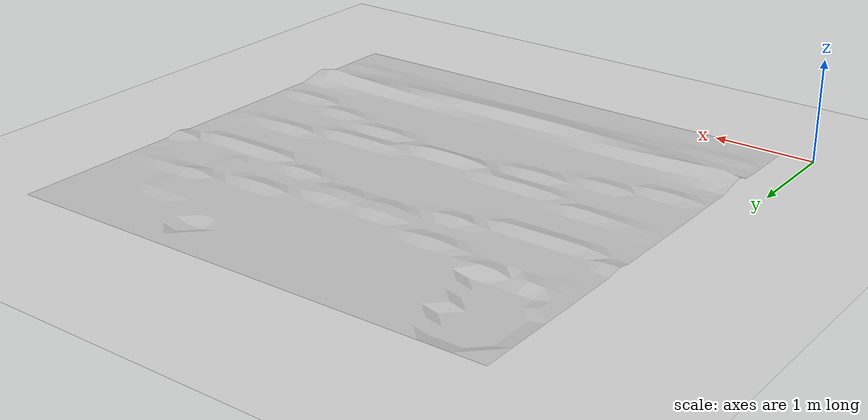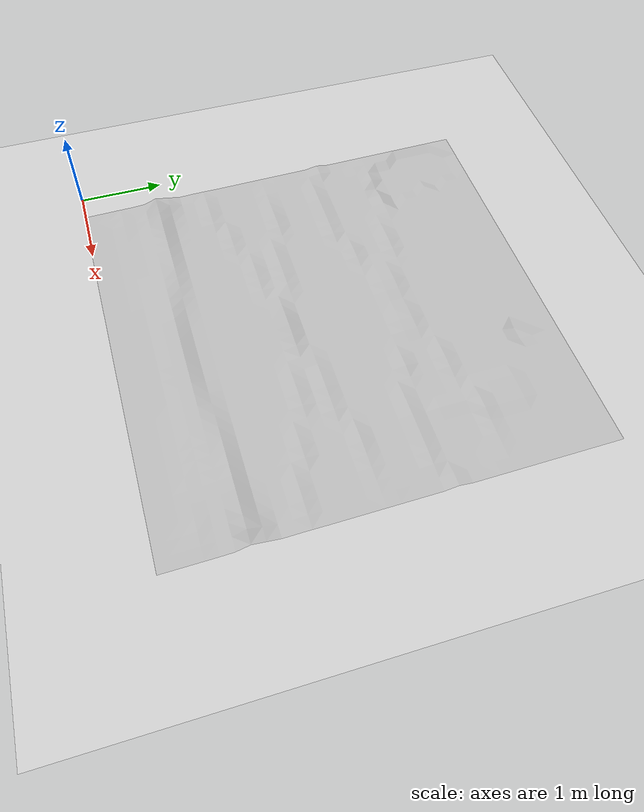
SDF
<sdf version="1.6">
 <world name="default">
  <light name="sun" type="directional">
   <pose>0 0 10 0 -0 0</pose>
   <diffuse>0.8 0.8 0.8 1</diffuse>
   <specular>0.2 0.2 0.2 1</specular>
   <attenuation>
    <range>1000</range>
    <constant>0.9</constant>
    <linear>0.01</linear>
    <quadratic>0.001</quadratic>
   </attenuation>
   <direction>-0.5 0.1 -0.9</direction>
  </light>
  <model name="ground_plane">
   <static>1</static>
   <link name="link">
    <collision name="collision">
     <geometry><plane><normal>0 0 1</normal><size>100 100</size></plane></geometry>
     <surface><friction><ode><mu>100</mu><mu2>50</mu2></ode></friction></surface>
    </collision>
    <visual name="visual">
     <cast_shadows>0</cast_shadows>
     <geometry><plane><normal>0 0 1</normal><size>100 100</size></plane></geometry>
     <material>
      <script><uri>file://media/materials/scripts/gazebo.material</uri><name>Gazebo/Grey</name></script>
     </material>
    </visual>
   </link>
  </model>
  <gravity>0 0 -9.8</gravity>
  <magnetic_field>6e-06 2.3e-05 -4.2e-05</magnetic_field>
  <atmosphere type="adiabatic"/>
  <physics name="default_physics" default="0" type="ode">
   <max_step_size>0.001</max_step_size>
   <real_time_factor>1</real_time_factor>
   <real_time_update_rate>1000</real_time_update_rate>
  </physics>
  <scene><ambient>0.4 0.4 0.4 1</ambient><background>0.7 0.7 0.7 1</background><shadows>1</shadows></scene>
  <spherical_coordinates>
   <surface_model>EARTH_WGS84</surface_model>
   <latitude_deg>0</latitude_deg>
   <longitude_deg>0</longitude_deg>
   <elevation>0</elevation>
   <heading_deg>0</heading_deg>
  </spherical_coordinates>
  <model name="duckieTerrain3">
   <link name="link">
    <collision name="collision">
     <geometry><mesh><uri>model://terrain3/meshes/terrain3.dae</uri></mesh></geometry>
    </collision>
    <visual name="visual">
     <cast_shadows>0</cast_shadows>
     <geometry><mesh><uri>model://terrain3/meshes/terrain3.dae</uri></mesh></geometry>
    </visual>
    <inertial>
     <mass>300</mass>
     <inertia><ixx>150</ixx><ixy>0</ixy><ixz>0</ixz><iyy>150</iyy><iyz>0</iyz><izz>150</izz></inertia>
    </inertial>
   </link>
   <pose>2.74263 2.44567 0.021411 -0.007914 -0.000858 -3.13264</pose>
  </model>
 </world>
</sdf>
